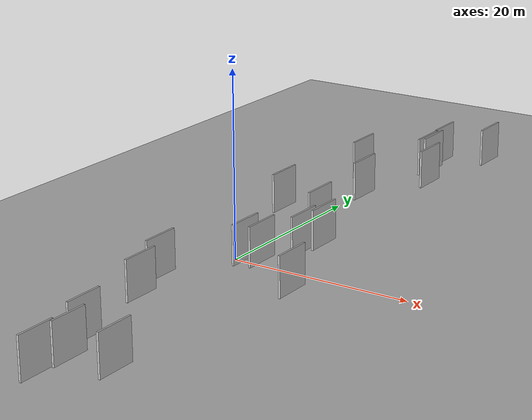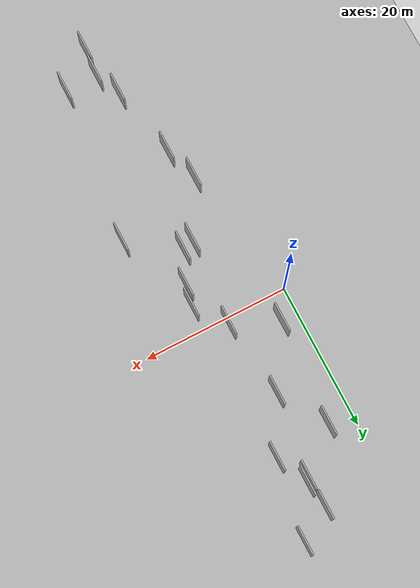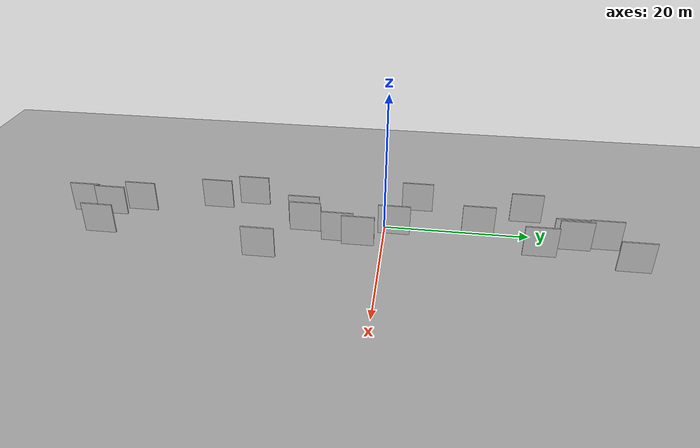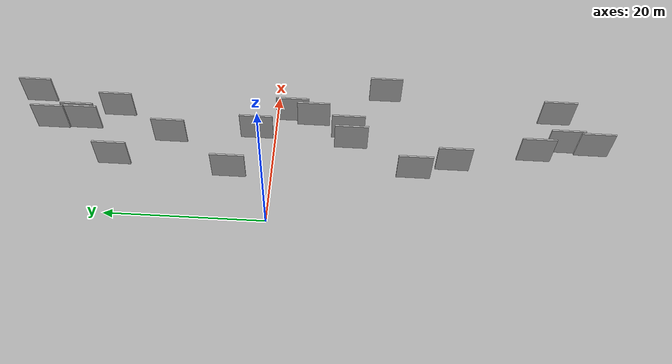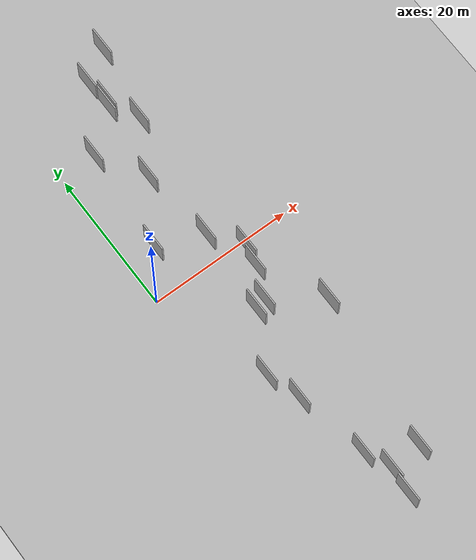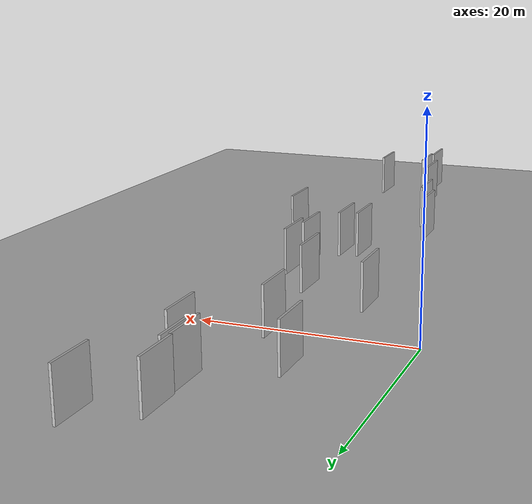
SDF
<?xml version="1.0" encoding="utf-8"?>

<sdf version="1.6">

   <world name="default">

      <gui fullscreen="0">

         <camera name="user_camera">

            <pose>-15 0 4.57585 0 0 0</pose>

            <view_controller>orbit</view_controller>

         </camera>

      </gui>

      <scene>

         <sky>

           <clouds>

             <speed>12</speed>

           </clouds>

         </sky>

         <ambient>0.4 0.4 0.4 1</ambient>

         <background>0.7 0.7 0.7 1</background>

         <shadows>1</shadows>

      </scene>

      <gravity>0 0 -9.8066</gravity>

      <magnetic_field>6e-06 2.3e-05 -4.2e-05</magnetic_field>

      <physics default="0" name="default_physics" type="ode">

         <ode>

            <solver>

               <type>quick</type>

               <iters>10</iters>

               <sor>1.0</sor>

               <use_dynamic_moi_rescaling>0</use_dynamic_moi_rescaling>

            </solver>

            <constraints>

               <cfm>0</cfm>

               <erp>0.2</erp>

               <contact_max_correcting_vel>100</contact_max_correcting_vel>

               <contact_surface_layer>0.001</contact_surface_layer>

            </constraints>

         </ode>

         <max_step_size>0.004</max_step_size>

         <real_time_factor>1</real_time_factor>

         <real_time_update_rate>250</real_time_update_rate>

      </physics>

      <light name="sun" type="directional">

         <cast_shadows>1</cast_shadows>

         <pose>0 0 10 0 0 0</pose>

         <diffuse>0.8 0.8 0.8 1</diffuse>

         <specular>0.2 0.2 0.2 1</specular>

         <attenuation>

            <range>1000</range>

            <constant>0.9</constant>

            <linear>0.01</linear>

            <quadratic>0.001</quadratic>

         </attenuation>

         <direction>-0.5 0.1 -0.9</direction>

      </light>

      <include>

         <name>ground_plane_1</name>

         <uri>model://HANNAS_ground_plane</uri>

         <pose>0 0 0  0 0 0</pose>

      </include>

      <include>

         <name>ground_plane_2</name>

         <uri>model://HANNAS_ground_plane</uri>

         <pose>100 0 0  0 0 0</pose>

      </include>

      <model name="HANNAS_wall_1">

         <static>1</static>

         <pose frame="">9.3334 23.1109 5.0 0.000000 0.000000 1.570796</pose>

         <link name="link">

            <pose frame="">0 0 2.00 0 0 0</pose>

            <collision name="collision">

               <geometry>

                  <box>

                     <size>4.00 0.2 4.00</size>

                  </box>

               </geometry>

               <max_contacts>10</max_contacts>

               <surface>

                  <contact>

                     <ode/>

                  </contact>

                  <bounce/>

                  <friction>

                     <torsional>

                        <ode/>

                     </torsional>

                     <ode/>

                  </friction>

               </surface>

            </collision>

            <visual name="visual">

               <cast_shadows>0</cast_shadows>

               <geometry>

                  <box>

                     <size>4.00 0.2 4.00</size>

                  </box>

               </geometry>

               <material>

                  <script>

                     <uri>model://HANNAS_wall/materials/scripts</uri>

                     <uri>model://HANNAS_wall/materials/textures</uri>

                     <name>vrc/HANNAS_wall</name>

                  </script>

               </material>

            </visual>

            <self_collide>0</self_collide>

            <enable_wind>0</enable_wind>

            <kinematic>0</kinematic>

         </link>

      </model>

      <model name="HANNAS_wall_2">

         <static>1</static>

         <pose frame="">3.0269 4.4462 5.0 0.000000 0.000000 1.570796</pose>

         <link name="link">

            <pose frame="">0 0 2.00 0 0 0</pose>

            <collision name="collision">

               <geometry>

                  <box>

                     <size>4.00 0.2 4.00</size>

                  </box>

               </geometry>

               <max_contacts>10</max_contacts>

               <surface>

                  <contact>

                     <ode/>

                  </contact>

                  <bounce/>

                  <friction>

                     <torsional>

                        <ode/>

                     </torsional>

                     <ode/>

                  </friction>

               </surface>

            </collision>

            <visual name="visual">

               <cast_shadows>0</cast_shadows>

               <geometry>

                  <box>

                     <size>4.00 0.2 4.00</size>

                  </box>

               </geometry>

               <material>

                  <script>

                     <uri>model://HANNAS_wall/materials/scripts</uri>

                     <uri>model://HANNAS_wall/materials/textures</uri>

                     <name>vrc/HANNAS_wall</name>

                  </script>

               </material>

            </visual>

            <self_collide>0</self_collide>

            <enable_wind>0</enable_wind>

            <kinematic>0</kinematic>

         </link>

      </model>

      <model name="HANNAS_wall_3">

         <static>1</static>

         <pose frame="">9.0655 -35.3267 5.0 0.000000 0.000000 1.570796</pose>

         <link name="link">

            <pose frame="">0 0 2.00 0 0 0</pose>

            <collision name="collision">

               <geometry>

                  <box>

                     <size>4.00 0.2 4.00</size>

                  </box>

               </geometry>

               <max_contacts>10</max_contacts>

               <surface>

                  <contact>

                     <ode/>

                  </contact>

                  <bounce/>

                  <friction>

                     <torsional>

                        <ode/>

                     </torsional>

                     <ode/>

                  </friction>

               </surface>

            </collision>

            <visual name="visual">

               <cast_shadows>0</cast_shadows>

               <geometry>

                  <box>

                     <size>4.00 0.2 4.00</size>

                  </box>

               </geometry>

               <material>

                  <script>

                     <uri>model://HANNAS_wall/materials/scripts</uri>

                     <uri>model://HANNAS_wall/materials/textures</uri>

                     <name>vrc/HANNAS_wall</name>

                  </script>

               </material>

            </visual>

            <self_collide>0</self_collide>

            <enable_wind>0</enable_wind>

            <kinematic>0</kinematic>

         </link>

      </model>

      <model name="HANNAS_wall_4">

         <static>1</static>

         <pose frame="">9.1874 27.1675 5.0 0.000000 0.000000 1.570796</pose>

         <link name="link">

            <pose frame="">0 0 2.00 0 0 0</pose>

            <collision name="collision">

               <geometry>

                  <box>

                     <size>4.00 0.2 4.00</size>

                  </box>

               </geometry>

               <max_contacts>10</max_contacts>

               <surface>

                  <contact>

                     <ode/>

                  </contact>

                  <bounce/>

                  <friction>

                     <torsional>

                        <ode/>

                     </torsional>

                     <ode/>

                  </friction>

               </surface>

            </collision>

            <visual name="visual">

               <cast_shadows>0</cast_shadows>

               <geometry>

                  <box>

                     <size>4.00 0.2 4.00</size>

                  </box>

               </geometry>

               <material>

                  <script>

                     <uri>model://HANNAS_wall/materials/scripts</uri>

                     <uri>model://HANNAS_wall/materials/textures</uri>

                     <name>vrc/HANNAS_wall</name>

                  </script>

               </material>

            </visual>

            <self_collide>0</self_collide>

            <enable_wind>0</enable_wind>

            <kinematic>0</kinematic>

         </link>

      </model>

      <model name="HANNAS_wall_5">

         <static>1</static>

         <pose frame="">11.6556 19.3275 5.0 0.000000 0.000000 1.570796</pose>

         <link name="link">

            <pose frame="">0 0 2.00 0 0 0</pose>

            <collision name="collision">

               <geometry>

                  <box>

                     <size>4.00 0.2 4.00</size>

                  </box>

               </geometry>

               <max_contacts>10</max_contacts>

               <surface>

                  <contact>

                     <ode/>

                  </contact>

                  <bounce/>

                  <friction>

                     <torsional>

                        <ode/>

                     </torsional>

                     <ode/>

                  </friction>

               </surface>

            </collision>

            <visual name="visual">

               <cast_shadows>0</cast_shadows>

               <geometry>

                  <box>

                     <size>4.00 0.2 4.00</size>

                  </box>

               </geometry>

               <material>

                  <script>

                     <uri>model://HANNAS_wall/materials/scripts</uri>

                     <uri>model://HANNAS_wall/materials/textures</uri>

                     <name>vrc/HANNAS_wall</name>

                  </script>

               </material>

            </visual>

            <self_collide>0</self_collide>

            <enable_wind>0</enable_wind>

            <kinematic>0</kinematic>

         </link>

      </model>

      <model name="HANNAS_wall_6">

         <static>1</static>

         <pose frame="">16.0989 -13.9752 5.0 0.000000 0.000000 1.570796</pose>

         <link name="link">

            <pose frame="">0 0 2.00 0 0 0</pose>

            <collision name="collision">

               <geometry>

                  <box>

                     <size>4.00 0.2 4.00</size>

                  </box>

               </geometry>

               <max_contacts>10</max_contacts>

               <surface>

                  <contact>

                     <ode/>

                  </contact>

                  <bounce/>

                  <friction>

                     <torsional>

                        <ode/>

                     </torsional>

                     <ode/>

                  </friction>

               </surface>

            </collision>

            <visual name="visual">

               <cast_shadows>0</cast_shadows>

               <geometry>

                  <box>

                     <size>4.00 0.2 4.00</size>

                  </box>

               </geometry>

               <material>

                  <script>

                     <uri>model://HANNAS_wall/materials/scripts</uri>

                     <uri>model://HANNAS_wall/materials/textures</uri>

                     <name>vrc/HANNAS_wall</name>

                  </script>

               </material>

            </visual>

            <self_collide>0</self_collide>

            <enable_wind>0</enable_wind>

            <kinematic>0</kinematic>

         </link>

      </model>

      <model name="HANNAS_wall_7">

         <static>1</static>

         <pose frame="">13.4439 29.8319 5.0 0.000000 0.000000 1.570796</pose>

         <link name="link">

            <pose frame="">0 0 2.00 0 0 0</pose>

            <collision name="collision">

               <geometry>

                  <box>

                     <size>4.00 0.2 4.00</size>

                  </box>

               </geometry>

               <max_contacts>10</max_contacts>

               <surface>

                  <contact>

                     <ode/>

                  </contact>

                  <bounce/>

                  <friction>

                     <torsional>

                        <ode/>

                     </torsional>

                     <ode/>

                  </friction>

               </surface>

            </collision>

            <visual name="visual">

               <cast_shadows>0</cast_shadows>

               <geometry>

                  <box>

                     <size>4.00 0.2 4.00</size>

                  </box>

               </geometry>

               <material>

                  <script>

                     <uri>model://HANNAS_wall/materials/scripts</uri>

                     <uri>model://HANNAS_wall/materials/textures</uri>

                     <name>vrc/HANNAS_wall</name>

                  </script>

               </material>

            </visual>

            <self_collide>0</self_collide>

            <enable_wind>0</enable_wind>

            <kinematic>0</kinematic>

         </link>

      </model>

      <model name="HANNAS_wall_8">

         <static>1</static>

         <pose frame="">9.0660 1.7248 5.0 0.000000 0.000000 1.570796</pose>

         <link name="link">

            <pose frame="">0 0 2.00 0 0 0</pose>

            <collision name="collision">

               <geometry>

                  <box>

                     <size>4.00 0.2 4.00</size>

                  </box>

               </geometry>

               <max_contacts>10</max_contacts>

               <surface>

                  <contact>

                     <ode/>

                  </contact>

                  <bounce/>

                  <friction>

                     <torsional>

                        <ode/>

                     </torsional>

                     <ode/>

                  </friction>

               </surface>

            </collision>

            <visual name="visual">

               <cast_shadows>0</cast_shadows>

               <geometry>

                  <box>

                     <size>4.00 0.2 4.00</size>

                  </box>

               </geometry>

               <material>

                  <script>

                     <uri>model://HANNAS_wall/materials/scripts</uri>

                     <uri>model://HANNAS_wall/materials/textures</uri>

                     <name>vrc/HANNAS_wall</name>

                  </script>

               </material>

            </visual>

            <self_collide>0</self_collide>

            <enable_wind>0</enable_wind>

            <kinematic>0</kinematic>

         </link>

      </model>

      <model name="HANNAS_wall_9">

         <static>1</static>

         <pose frame="">12.1372 -2.4791 5.0 0.000000 0.000000 1.570796</pose>

         <link name="link">

            <pose frame="">0 0 2.00 0 0 0</pose>

            <collision name="collision">

               <geometry>

                  <box>

                     <size>4.00 0.2 4.00</size>

                  </box>

               </geometry>

               <max_contacts>10</max_contacts>

               <surface>

                  <contact>

                     <ode/>

                  </contact>

                  <bounce/>

                  <friction>

                     <torsional>

                        <ode/>

                     </torsional>

                     <ode/>

                  </friction>

               </surface>

            </collision>

            <visual name="visual">

               <cast_shadows>0</cast_shadows>

               <geometry>

                  <box>

                     <size>4.00 0.2 4.00</size>

                  </box>

               </geometry>

               <material>

                  <script>

                     <uri>model://HANNAS_wall/materials/scripts</uri>

                     <uri>model://HANNAS_wall/materials/textures</uri>

                     <name>vrc/HANNAS_wall</name>

                  </script>

               </material>

            </visual>

            <self_collide>0</self_collide>

            <enable_wind>0</enable_wind>

            <kinematic>0</kinematic>

         </link>

      </model>

      <model name="HANNAS_wall_10">

         <static>1</static>

         <pose frame="">5.5662 -21.9198 5.0 0.000000 0.000000 1.570796</pose>

         <link name="link">

            <pose frame="">0 0 2.00 0 0 0</pose>

            <collision name="collision">

               <geometry>

                  <box>

                     <size>4.00 0.2 4.00</size>

                  </box>

               </geometry>

               <max_contacts>10</max_contacts>

               <surface>

                  <contact>

                     <ode/>

                  </contact>

                  <bounce/>

                  <friction>

                     <torsional>

                        <ode/>

                     </torsional>

                     <ode/>

                  </friction>

               </surface>

            </collision>

            <visual name="visual">

               <cast_shadows>0</cast_shadows>

               <geometry>

                  <box>

                     <size>4.00 0.2 4.00</size>

                  </box>

               </geometry>

               <material>

                  <script>

                     <uri>model://HANNAS_wall/materials/scripts</uri>

                     <uri>model://HANNAS_wall/materials/textures</uri>

                     <name>vrc/HANNAS_wall</name>

                  </script>

               </material>

            </visual>

            <self_collide>0</self_collide>

            <enable_wind>0</enable_wind>

            <kinematic>0</kinematic>

         </link>

      </model>

      <model name="HANNAS_wall_11">

         <static>1</static>

         <pose frame="">8.7674 -38.7767 5.0 0.000000 0.000000 1.570796</pose>

         <link name="link">

            <pose frame="">0 0 2.00 0 0 0</pose>

            <collision name="collision">

               <geometry>

                  <box>

                     <size>4.00 0.2 4.00</size>

                  </box>

               </geometry>

               <max_contacts>10</max_contacts>

               <surface>

                  <contact>

                     <ode/>

                  </contact>

                  <bounce/>

                  <friction>

                     <torsional>

                        <ode/>

                     </torsional>

                     <ode/>

                  </friction>

               </surface>

            </collision>

            <visual name="visual">

               <cast_shadows>0</cast_shadows>

               <geometry>

                  <box>

                     <size>4.00 0.2 4.00</size>

                  </box>

               </geometry>

               <material>

                  <script>

                     <uri>model://HANNAS_wall/materials/scripts</uri>

                     <uri>model://HANNAS_wall/materials/textures</uri>

                     <name>vrc/HANNAS_wall</name>

                  </script>

               </material>

            </visual>

            <self_collide>0</self_collide>

            <enable_wind>0</enable_wind>

            <kinematic>0</kinematic>

         </link>

      </model>

      <model name="HANNAS_wall_12">

         <static>1</static>

         <pose frame="">13.5094 -35.0301 5.0 0.000000 0.000000 1.570796</pose>

         <link name="link">

            <pose frame="">0 0 2.00 0 0 0</pose>

            <collision name="collision">

               <geometry>

                  <box>

                     <size>4.00 0.2 4.00</size>

                  </box>

               </geometry>

               <max_contacts>10</max_contacts>

               <surface>

                  <contact>

                     <ode/>

                  </contact>

                  <bounce/>

                  <friction>

                     <torsional>

                        <ode/>

                     </torsional>

                     <ode/>

                  </friction>

               </surface>

            </collision>

            <visual name="visual">

               <cast_shadows>0</cast_shadows>

               <geometry>

                  <box>

                     <size>4.00 0.2 4.00</size>

                  </box>

               </geometry>

               <material>

                  <script>

                     <uri>model://HANNAS_wall/materials/scripts</uri>

                     <uri>model://HANNAS_wall/materials/textures</uri>

                     <name>vrc/HANNAS_wall</name>

                  </script>

               </material>

            </visual>

            <self_collide>0</self_collide>

            <enable_wind>0</enable_wind>

            <kinematic>0</kinematic>

         </link>

      </model>

      <model name="HANNAS_wall_13">

         <static>1</static>

         <pose frame="">11.5421 -5.1013 5.0 0.000000 0.000000 1.570796</pose>

         <link name="link">

            <pose frame="">0 0 2.00 0 0 0</pose>

            <collision name="collision">

               <geometry>

                  <box>

                     <size>4.00 0.2 4.00</size>

                  </box>

               </geometry>

               <max_contacts>10</max_contacts>

               <surface>

                  <contact>

                     <ode/>

                  </contact>

                  <bounce/>

                  <friction>

                     <torsional>

                        <ode/>

                     </torsional>

                     <ode/>

                  </friction>

               </surface>

            </collision>

            <visual name="visual">

               <cast_shadows>0</cast_shadows>

               <geometry>

                  <box>

                     <size>4.00 0.2 4.00</size>

                  </box>

               </geometry>

               <material>

                  <script>

                     <uri>model://HANNAS_wall/materials/scripts</uri>

                     <uri>model://HANNAS_wall/materials/textures</uri>

                     <name>vrc/HANNAS_wall</name>

                  </script>

               </material>

            </visual>

            <self_collide>0</self_collide>

            <enable_wind>0</enable_wind>

            <kinematic>0</kinematic>

         </link>

      </model>

      <model name="HANNAS_wall_14">

         <static>1</static>

         <pose frame="">4.1350 -17.2834 5.0 0.000000 0.000000 1.570796</pose>

         <link name="link">

            <pose frame="">0 0 2.00 0 0 0</pose>

            <collision name="collision">

               <geometry>

                  <box>

                     <size>4.00 0.2 4.00</size>

                  </box>

               </geometry>

               <max_contacts>10</max_contacts>

               <surface>

                  <contact>

                     <ode/>

                  </contact>

                  <bounce/>

                  <friction>

                     <torsional>

                        <ode/>

                     </torsional>

                     <ode/>

                  </friction>

               </surface>

            </collision>

            <visual name="visual">

               <cast_shadows>0</cast_shadows>

               <geometry>

                  <box>

                     <size>4.00 0.2 4.00</size>

                  </box>

               </geometry>

               <material>

                  <script>

                     <uri>model://HANNAS_wall/materials/scripts</uri>

                     <uri>model://HANNAS_wall/materials/textures</uri>

                     <name>vrc/HANNAS_wall</name>

                  </script>

               </material>

            </visual>

            <self_collide>0</self_collide>

            <enable_wind>0</enable_wind>

            <kinematic>0</kinematic>

         </link>

      </model>

      <model name="HANNAS_wall_15">

         <static>1</static>

         <pose frame="">4.0252 18.3982 5.0 0.000000 0.000000 1.570796</pose>

         <link name="link">

            <pose frame="">0 0 2.00 0 0 0</pose>

            <collision name="collision">

               <geometry>

                  <box>

                     <size>4.00 0.2 4.00</size>

                  </box>

               </geometry>

               <max_contacts>10</max_contacts>

               <surface>

                  <contact>

                     <ode/>

                  </contact>

                  <bounce/>

                  <friction>

                     <torsional>

                        <ode/>

                     </torsional>

                     <ode/>

                  </friction>

               </surface>

            </collision>

            <visual name="visual">

               <cast_shadows>0</cast_shadows>

               <geometry>

                  <box>

                     <size>4.00 0.2 4.00</size>

                  </box>

               </geometry>

               <material>

                  <script>

                     <uri>model://HANNAS_wall/materials/scripts</uri>

                     <uri>model://HANNAS_wall/materials/textures</uri>

                     <name>vrc/HANNAS_wall</name>

                  </script>

               </material>

            </visual>

            <self_collide>0</self_collide>

            <enable_wind>0</enable_wind>

            <kinematic>0</kinematic>

         </link>

      </model>

      <model name="HANNAS_wall_16">

         <static>1</static>

         <pose frame="">7.8493 12.1764 5.0 0.000000 0.000000 1.570796</pose>

         <link name="link">

            <pose frame="">0 0 2.00 0 0 0</pose>

            <collision name="collision">

               <geometry>

                  <box>

                     <size>4.00 0.2 4.00</size>

                  </box>

               </geometry>

               <max_contacts>10</max_contacts>

               <surface>

                  <contact>

                     <ode/>

                  </contact>

                  <bounce/>

                  <friction>

                     <torsional>

                        <ode/>

                     </torsional>

                     <ode/>

                  </friction>

               </surface>

            </collision>

            <visual name="visual">

               <cast_shadows>0</cast_shadows>

               <geometry>

                  <box>

                     <size>4.00 0.2 4.00</size>

                  </box>

               </geometry>

               <material>

                  <script>

                     <uri>model://HANNAS_wall/materials/scripts</uri>

                     <uri>model://HANNAS_wall/materials/textures</uri>

                     <name>vrc/HANNAS_wall</name>

                  </script>

               </material>

            </visual>

            <self_collide>0</self_collide>

            <enable_wind>0</enable_wind>

            <kinematic>0</kinematic>

         </link>

      </model>

      <model name="HANNAS_wall_17">

         <static>1</static>

         <pose frame="">9.7446 -9.3925 5.0 0.000000 0.000000 1.570796</pose>

         <link name="link">

            <pose frame="">0 0 2.00 0 0 0</pose>

            <collision name="collision">

               <geometry>

                  <box>

                     <size>4.00 0.2 4.00</size>

                  </box>

               </geometry>

               <max_contacts>10</max_contacts>

               <surface>

                  <contact>

                     <ode/>

                  </contact>

                  <bounce/>

                  <friction>

                     <torsional>

                        <ode/>

                     </torsional>

                     <ode/>

                  </friction>

               </surface>

            </collision>

            <visual name="visual">

               <cast_shadows>0</cast_shadows>

               <geometry>

                  <box>

                     <size>4.00 0.2 4.00</size>

                  </box>

               </geometry>

               <material>

                  <script>

                     <uri>model://HANNAS_wall/materials/scripts</uri>

                     <uri>model://HANNAS_wall/materials/textures</uri>

                     <name>vrc/HANNAS_wall</name>

                  </script>

               </material>

            </visual>

            <self_collide>0</self_collide>

            <enable_wind>0</enable_wind>

            <kinematic>0</kinematic>

         </link>

      </model>

      <model name="HANNAS_wall_18">

         <static>1</static>

         <pose frame="">7.5764 -31.7568 5.0 0.000000 0.000000 1.570796</pose>

         <link name="link">

            <pose frame="">0 0 2.00 0 0 0</pose>

            <collision name="collision">

               <geometry>

                  <box>

                     <size>4.00 0.2 4.00</size>

                  </box>

               </geometry>

               <max_contacts>10</max_contacts>

               <surface>

                  <contact>

                     <ode/>

                  </contact>

                  <bounce/>

                  <friction>

                     <torsional>

                        <ode/>

                     </torsional>

                     <ode/>

                  </friction>

               </surface>

            </collision>

            <visual name="visual">

               <cast_shadows>0</cast_shadows>

               <geometry>

                  <box>

                     <size>4.00 0.2 4.00</size>

                  </box>

               </geometry>

               <material>

                  <script>

                     <uri>model://HANNAS_wall/materials/scripts</uri>

                     <uri>model://HANNAS_wall/materials/textures</uri>

                     <name>vrc/HANNAS_wall</name>

                  </script>

               </material>

            </visual>

            <self_collide>0</self_collide>

            <enable_wind>0</enable_wind>

            <kinematic>0</kinematic>

         </link>

      </model>

      <model name="HANNAS_wall_19">

         <static>1</static>

         <pose frame="">8.1858 -9.8047 5.0 0.000000 0.000000 1.570796</pose>

         <link name="link">

            <pose frame="">0 0 2.00 0 0 0</pose>

            <collision name="collision">

               <geometry>

                  <box>

                     <size>4.00 0.2 4.00</size>

                  </box>

               </geometry>

               <max_contacts>10</max_contacts>

               <surface>

                  <contact>

                     <ode/>

                  </contact>

                  <bounce/>

                  <friction>

                     <torsional>

                        <ode/>

                     </torsional>

                     <ode/>

                  </friction>

               </surface>

            </collision>

            <visual name="visual">

               <cast_shadows>0</cast_shadows>

               <geometry>

                  <box>

                     <size>4.00 0.2 4.00</size>

                  </box>

               </geometry>

               <material>

                  <script>

                     <uri>model://HANNAS_wall/materials/scripts</uri>

                     <uri>model://HANNAS_wall/materials/textures</uri>

                     <name>vrc/HANNAS_wall</name>

                  </script>

               </material>

            </visual>

            <self_collide>0</self_collide>

            <enable_wind>0</enable_wind>

            <kinematic>0</kinematic>

         </link>

      </model>

      <model name="HANNAS_wall_20">

         <static>1</static>

         <pose frame="">9.7452 23.6496 5.0 0.000000 0.000000 1.570796</pose>

         <link name="link">

            <pose frame="">0 0 2.00 0 0 0</pose>

            <collision name="collision">

               <geometry>

                  <box>

                     <size>4.00 0.2 4.00</size>

                  </box>

               </geometry>

               <max_contacts>10</max_contacts>

               <surface>

                  <contact>

                     <ode/>

                  </contact>

                  <bounce/>

                  <friction>

                     <torsional>

                        <ode/>

                     </torsional>

                     <ode/>

                  </friction>

               </surface>

            </collision>

            <visual name="visual">

               <cast_shadows>0</cast_shadows>

               <geometry>

                  <box>

                     <size>4.00 0.2 4.00</size>

                  </box>

               </geometry>

               <material>

                  <script>

                     <uri>model://HANNAS_wall/materials/scripts</uri>

                     <uri>model://HANNAS_wall/materials/textures</uri>

                     <name>vrc/HANNAS_wall</name>

                  </script>

               </material>

            </visual>

            <self_collide>0</self_collide>

            <enable_wind>0</enable_wind>

            <kinematic>0</kinematic>

         </link>

      </model>

   </world>

</sdf>

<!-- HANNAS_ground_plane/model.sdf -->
<sdf version="1.4">
<model name="HANNAS_ground_plane">
  <static>true</static>
    <link name="link">
      <collision name="collision">
        <geometry>
          <plane>
            <normal>0 0 1</normal>
            <size>1000 1000</size>
          </plane>
        </geometry>
        <surface>
          <friction>
            <ode>
              <mu>100</mu>
              <mu2>50</mu2>
            </ode>
          </friction>
        </surface>
      </collision>
      <visual name="visual">
        <cast_shadows>false</cast_shadows>
        <geometry>
          <plane>
            <normal>0 0 1</normal>
            <size>1000 1000</size>
          </plane>
        </geometry>
        <material>
          <script>
            <uri>model://HANNAS_ground_plane/materials/scripts/HANNAS_ground_plane.material</uri>
	    <uri>model://HANNAS_ground_plane/materials/textures</uri>
            <name>HANNASGroundPlane/Image</name>
          </script>
        </material>
      </visual>
    </link>
  </model>
</sdf>
